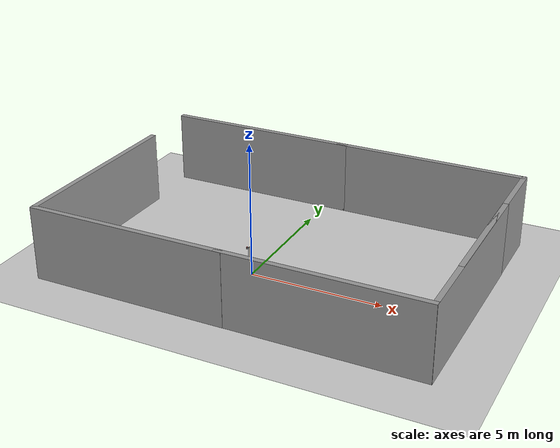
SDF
<sdf version="1.7">
 <world name="default">
  <light name="sun" type="directional">
   <pose>0 0 10 0 -0 0</pose>
   <diffuse>0.8 0.8 0.8 1</diffuse>
   <specular>0.2 0.2 0.2 1</specular>
   <attenuation>
    <range>1000</range>
    <constant>0.9</constant>
    <linear>0.01</linear>
    <quadratic>0.001</quadratic>
   </attenuation>
   <direction>-0.5 0.1 -0.9</direction>
   <spot><inner_angle>0</inner_angle><outer_angle>0</outer_angle><falloff>0</falloff></spot>
  </light>
  <model name="ground_plane">
   <static>1</static>
   <link name="link">
    <collision name="collision">
     <geometry><plane><normal>0 0 1</normal><size>100 100</size></plane></geometry>
     <surface><friction><ode><mu>100</mu><mu2>50</mu2></ode></friction></surface>
    </collision>
    <visual name="visual">
     <cast_shadows>0</cast_shadows>
     <geometry><plane><normal>0 0 1</normal><size>100 100</size></plane></geometry>
     <material>
      <script><uri>file://media/materials/scripts/gazebo.material</uri><name>Gazebo/Grey</name></script>
     </material>
    </visual>
   </link>
  </model>
  <gravity>0 0 -9.8</gravity>
  <magnetic_field>6e-06 2.3e-05 -4.2e-05</magnetic_field>
  <atmosphere type="adiabatic"/>
  <physics type="ode">
   <max_step_size>0.001</max_step_size>
   <real_time_factor>1</real_time_factor>
   <real_time_update_rate>1000</real_time_update_rate>
  </physics>
  <scene><ambient>0.4 0.4 0.4 1</ambient><background>0.7 0.7 0.7 1</background><shadows>1</shadows></scene>
  <audio><device>default</device></audio>
  <spherical_coordinates>
   <surface_model>EARTH_WGS84</surface_model>
   <latitude_deg>0</latitude_deg>
   <longitude_deg>0</longitude_deg>
   <elevation>0</elevation>
   <heading_deg>0</heading_deg>
  </spherical_coordinates>
  <model name="bob">
   <link name="base_link">
    <inertial>
     <pose>0.075524 0 0.197052 0 -0 0</pose>
     <mass>18.5001</mass>
     <inertia>
      <ixx>1.70736</ixx>
      <ixy>0</ixy>
      <ixz>0.545712</ixz>
      <iyy>2.13138</iyy>
      <iyz>1.59522e-13</iyz>
      <izz>0.597791</izz>
     </inertia>
    </inertial>
    <collision name="base_link_fixed_joint_lump__chassis_collision">
     <pose>0.11745 0 0.0425 0 -0 0</pose>
     <geometry><box><size>0.4 0.3 0.085</size></box></geometry>
    </collision>
    <collision name="base_link_fixed_joint_lump__camera_mount_collision_1">
     <pose>-0.10255 0 0.4875 0 -0 0</pose>
     <geometry><box><size>0.04 0.04 0.975</size></box></geometry>
    </collision>
    <collision name="base_link_fixed_joint_lump__camera_frame_collision_2">
     <pose>-0.08255 0 0.99 1.5708 -0 0</pose>
     <geometry><cylinder><length>0.085</length><radius>0.015</radius></cylinder></geometry>
    </collision>
    <collision name="base_link_fixed_joint_lump__emergency_mount_collision_3">
     <pose>-0.15755 0 0.955 0 -0 0</pose>
     <geometry><box><size>0.07 0.07 0.058</size></box></geometry>
    </collision>
    <collision name="base_link_fixed_joint_lump__emergency_button_collision_4">
     <pose>-0.15755 0 0.984 0 -0 0</pose>
     <geometry><cylinder><length>0.03</length><radius>0.02</radius></cylinder></geometry>
    </collision>
    <collision name="base_link_fixed_joint_lump__imu_frame_collision_5">
     <pose>0.04745 0 0.0855 0 -0 0</pose>
     <geometry><box><size>0.02 0.015 0.001</size></box></geometry>
    </collision>
    <collision name="base_link_fixed_joint_lump__lidar_frame_collision_6">
     <pose>0.20245 0 0.1125 0 -0 0</pose>
     <geometry><cylinder><length>0.055</length><radius>0.035</radius></cylinder></geometry>
    </collision>
    <collision name="base_link_fixed_joint_lump__wheel_mount_collision_7">
     <pose>0.39995 0 0.05 0 -0 0</pose>
     <geometry><box><size>0.165 0.08 0.07</size></box></geometry>
    </collision>
    <collision name="base_link_fixed_joint_lump__caster_wheel_collision_8">
     <pose>0.40745 0 -0.033775 0 -0 0</pose>
     <geometry><sphere><radius>0.048775</radius></sphere></geometry>
     <surface><friction><ode><mu>0.001</mu><mu2>0.001</mu2></ode></friction></surface>
    </collision>
    <visual name="base_link_fixed_joint_lump__chassis_visual">
     <pose>0.11745 0 0.0425 0 -0 0</pose>
     <geometry><box><size>0.4 0.3 0.085</size></box></geometry>
     <material>
      <script><name>Gazebo/White</name><uri>file://media/materials/scripts/gazebo.material</uri></script>
     </material>
    </visual>
    <visual name="base_link_fixed_joint_lump__camera_mount_visual_1">
     <pose>-0.10255 0 0.4875 0 -0 0</pose>
     <geometry><box><size>0.04 0.04 0.975</size></box></geometry>
     <material>
      <script><name>Gazebo/White</name><uri>file://media/materials/scripts/gazebo.material</uri></script>
     </material>
    </visual>
    <visual name="base_link_fixed_joint_lump__camera_frame_visual_2">
     <pose>-0.08255 0 0.99 1.5708 -0 0</pose>
     <geometry><cylinder><length>0.085</length><radius>0.015</radius></cylinder></geometry>
     <material>
      <script><name>Gazebo/Black</name><uri>file://media/materials/scripts/gazebo.material</uri></script>
     </material>
    </visual>
    <visual name="base_link_fixed_joint_lump__emergency_mount_visual_3">
     <pose>-0.15755 0 0.955 0 -0 0</pose>
     <geometry><box><size>0.07 0.07 0.058</size></box></geometry>
     <material>
      <script><name>Gazebo/Black</name><uri>file://media/materials/scripts/gazebo.material</uri></script>
     </material>
    </visual>
    <visual name="base_link_fixed_joint_lump__emergency_button_visual_4">
     <pose>-0.15755 0 0.984 0 -0 0</pose>
     <geometry><cylinder><length>0.03</length><radius>0.02</radius></cylinder></geometry>
     <material>
      <script><name>Gazebo/Red</name><uri>file://media/materials/scripts/gazebo.material</uri></script>
     </material>
    </visual>
    <visual name="base_link_fixed_joint_lump__imu_frame_visual_5">
     <pose>0.04745 0 0.0855 0 -0 0</pose>
     <geometry><box><size>0.02 0.015 0.001</size></box></geometry>
     <material>
      <script><name>Gazebo/Blue</name><uri>file://media/materials/scripts/gazebo.material</uri></script>
     </material>
    </visual>
    <visual name="base_link_fixed_joint_lump__lidar_frame_visual_6">
     <pose>0.20245 0 0.1125 0 -0 0</pose>
     <geometry><cylinder><length>0.055</length><radius>0.035</radius></cylinder></geometry>
     <material>
      <script><name>Gazebo/Red</name><uri>file://media/materials/scripts/gazebo.material</uri></script>
     </material>
    </visual>
    <visual name="base_link_fixed_joint_lump__wheel_mount_visual_7">
     <pose>0.39995 0 0.05 0 -0 0</pose>
     <geometry><box><size>0.165 0.08 0.07</size></box></geometry>
    </visual>
    <visual name="base_link_fixed_joint_lump__caster_wheel_visual_8">
     <pose>0.40745 0 -0.033775 0 -0 0</pose>
     <geometry><sphere><radius>0.048775</radius></sphere></geometry>
     <material>
      <script><name>Gazebo/Black</name><uri>file://media/materials/scripts/gazebo.material</uri></script>
     </material>
    </visual>
    <sensor name="camera" type="camera">
     <visualize>0</visualize>
     <update_rate>10</update_rate>
     <camera>
      <horizontal_fov>1.089</horizontal_fov>
      <image><format>R8G8B8</format><width>640</width><height>480</height></image>
      <clip><near>0.05</near><far>8</far></clip>
     </camera>
     <plugin name="camera_controller" filename="libgazebo_ros_camera.so">
      <frame_name>camera_optical_frame</frame_name>
     </plugin>
     <pose>-0.08255 0 0.99 0 -0 0</pose>
    </sensor>
    <sensor name="mpu6050_imu" type="imu">
     <always_on>1</always_on>
     <visualize>0</visualize>
     <update_rate>100</update_rate>
     <plugin name="imu_controller" filename="libgazebo_ros_imu_sensor.so">
      <topic_name>imu</topic_name>
      <frame_name>imu_frame</frame_name>
      <ros><remapping>~/out:=imu_broadcaster/imu</remapping></ros>
      <initial_orientation_as_reference>0</initial_orientation_as_reference>
     </plugin>
     <always_on>1</always_on>
     <update_rate>100</update_rate>
     <visualize>0</visualize>
     <imu>
      <angular_velocity>
       <x><noise type="gaussian"><mean>0</mean><stddev>0.0002</stddev></noise></x>
       <y><noise type="gaussian"><mean>0</mean><stddev>0.0002</stddev></noise></y>
       <z><noise type="gaussian"><mean>0</mean><stddev>0.0002</stddev></noise></z>
      </angular_velocity>
      <linear_acceleration>
       <x><noise type="gaussian"><mean>0</mean><stddev>0.017</stddev></noise></x>
       <y><noise type="gaussian"><mean>0</mean><stddev>0.017</stddev></noise></y>
       <z><noise type="gaussian"><mean>0</mean><stddev>0.017</stddev></noise></z>
      </linear_acceleration>
      <orientation>
       <x><noise type="gaussian"><mean>0.0</mean><stddev>2e-3</stddev></noise></x>
       <y><noise type="gaussian"><mean>0.0</mean><stddev>2e-3</stddev></noise></y>
       <z><noise type="gaussian"><mean>0.0</mean><stddev>2e-3</stddev></noise></z>
      </orientation>
     </imu>
     <pose>0.04745 0 0.0855 0 -0 0</pose>
    </sensor>
    <sensor name="lidar" type="ray">
     <visualize>1</visualize>
     <update_rate>10</update_rate>
     <ray>
      <scan>
       <horizontal>
        <samples>360</samples>
        <min_angle>-2</min_angle>
        <max_angle>2</max_angle>
        <resolution>1</resolution>
       </horizontal>
       <vertical><samples>1</samples><min_angle>0</min_angle><max_angle>0</max_angle></vertical>
      </scan>
      <range><min>0.15</min><max>6</max><resolution>0.015</resolution></range>
      <noise><type>gaussian</type><mean>0</mean><stddev>0.01</stddev></noise>
     </ray>
     <plugin name="laser_controller" filename="libgazebo_ros_ray_sensor.so">
      <ros><argument>~/out:=scan</argument></ros>
      <output_type>sensor_msgs/LaserScan</output_type>
      <frame_name>lidar_frame</frame_name>
     </plugin>
     <pose>0.20245 0 0.1125 0 -0 0</pose>
    </sensor>
   </link>
   <joint name="left_wheel_joint" type="revolute">
    <pose relative_to="base_link">0 0.184 0 -1.5708 0 0</pose>
    <parent>base_link</parent>
    <child>left_wheel</child>
    <axis>
     <xyz>0 0 1</xyz>
     <limit><effort>1000</effort><velocity>1000</velocity><lower>-1e+16</lower><upper>1e+16</upper></limit>
     <dynamics>
      <damping>1</damping>
      <friction>1</friction>
      <spring_reference>0</spring_reference>
      <spring_stiffness>0</spring_stiffness>
     </dynamics>
    </axis>
   </joint>
   <link name="left_wheel">
    <pose relative_to="left_wheel_joint">0 0 0 0 -0 0</pose>
    <inertial>
     <mass>3.94514</mass>
     <inertia>
      <ixx>0.00824123</ixx>
      <ixy>0</ixy>
      <ixz>0</ixz>
      <iyy>0.00824123</iyy>
      <iyz>0</iyz>
      <izz>0.0134421</izz>
     </inertia>
    </inertial>
    <collision name="left_wheel_collision">
     <geometry><cylinder><length>0.068</length><radius>0.08255</radius></cylinder></geometry>
     <surface><friction><ode><mu>0.2</mu><mu2>0.2</mu2></ode></friction></surface>
    </collision>
    <visual name="left_wheel_visual">
     <geometry><cylinder><length>0.068</length><radius>0.08255</radius></cylinder></geometry>
     <material>
      <script><name>Gazebo/Black</name><uri>file://media/materials/scripts/gazebo.material</uri></script>
     </material>
    </visual>
   </link>
   <joint name="right_wheel_joint" type="revolute">
    <pose relative_to="base_link">0 -0.184 0 1.5708 -0 0</pose>
    <parent>base_link</parent>
    <child>right_wheel</child>
    <axis>
     <xyz>0 0 -1</xyz>
     <limit><effort>1000</effort><velocity>1000</velocity><lower>-1e+16</lower><upper>1e+16</upper></limit>
     <dynamics>
      <damping>1</damping>
      <friction>1</friction>
      <spring_reference>0</spring_reference>
      <spring_stiffness>0</spring_stiffness>
     </dynamics>
    </axis>
   </joint>
   <link name="right_wheel">
    <pose relative_to="right_wheel_joint">0 0 0 0 -0 0</pose>
    <inertial>
     <mass>3.94514</mass>
     <inertia>
      <ixx>0.00824123</ixx>
      <ixy>0</ixy>
      <ixz>0</ixz>
      <iyy>0.00824123</iyy>
      <iyz>0</iyz>
      <izz>0.0134421</izz>
     </inertia>
    </inertial>
    <collision name="right_wheel_collision">
     <geometry><cylinder><length>0.068</length><radius>0.08255</radius></cylinder></geometry>
     <surface><friction><ode><mu>0.2</mu><mu2>0.2</mu2></ode></friction></surface>
    </collision>
    <visual name="right_wheel_visual">
     <geometry><cylinder><length>0.068</length><radius>0.08255</radius></cylinder></geometry>
     <material>
      <script><name>Gazebo/Black</name><uri>file://media/materials/scripts/gazebo.material</uri></script>
     </material>
    </visual>
   </link>
   <static>0</static>
   <plugin name="diff_drive" filename="libgazebo_ros_diff_drive.so">
    <left_joint>left_wheel_joint</left_joint>
    <right_joint>right_wheel_joint</right_joint>
    <wheel_separation>0.368</wheel_separation>
    <wheel_diameter>0.1651</wheel_diameter>
    <max_wheel_torque>20</max_wheel_torque>
    <max_wheel_acceleration>2</max_wheel_acceleration>
    <odometry_frame>odom</odometry_frame>
    <robot_base_frame>base_link</robot_base_frame>
    <publish_odom>1</publish_odom>
    <publish_odom_tf>1</publish_odom_tf>
    <publish_wheel_tf>1</publish_wheel_tf>
    <publish_wheel_joint_state>1</publish_wheel_joint_state>
    <command_topic>cmd_vel</command_topic>
    <odometry_topic>odom</odometry_topic>
   </plugin>
   <pose>-1.2e-05 1.9e-05 0.08255 0 0 -0.000138</pose>
  </model>
  <model name="grey_wall">
   <static>1</static>
   <link name="link">
    <pose>0 0 1.4 0 -0 0</pose>
    <collision name="collision"><geometry><box><size>7.5 0.2 2.8</size></box></geometry></collision>
    <visual name="visual">
     <cast_shadows>0</cast_shadows>
     <geometry><box><size>7.5 0.2 2.8</size></box></geometry>
     <material>
      <script>
       <uri>model://grey_wall/materials/scripts</uri>
       <uri>model://grey_wall/materials/textures</uri>
       <name>vrc/grey_wall</name>
      </script>
     </material>
    </visual>
   </link>
   <pose>4.25583 -3.47373 0 0 -0 0</pose>
  </model>
  <model name="grey_wall_0">
   <static>1</static>
   <link name="link">
    <pose>0 0 1.4 0 -0 0</pose>
    <collision name="collision"><geometry><box><size>7.5 0.2 2.8</size></box></geometry></collision>
    <visual name="visual">
     <cast_shadows>0</cast_shadows>
     <geometry><box><size>7.5 0.2 2.8</size></box></geometry>
     <material>
      <script>
       <uri>model://grey_wall/materials/scripts</uri>
       <uri>model://grey_wall/materials/textures</uri>
       <name>vrc/grey_wall</name>
      </script>
     </material>
    </visual>
   </link>
   <pose>-2.94663 -3.47836 0 0 -0 0</pose>
  </model>
  <model name="grey_wall_1">
   <static>1</static>
   <link name="link">
    <pose>0 0 1.4 0 -0 0</pose>
    <collision name="collision"><geometry><box><size>7.5 0.2 2.8</size></box></geometry></collision>
    <visual name="visual">
     <cast_shadows>0</cast_shadows>
     <geometry><box><size>7.5 0.2 2.8</size></box></geometry>
     <material>
      <script>
       <uri>model://grey_wall/materials/scripts</uri>
       <uri>model://grey_wall/materials/textures</uri>
       <name>vrc/grey_wall</name>
      </script>
     </material>
    </visual>
   </link>
   <pose>-6.54135 0.190237 -0 0 0 -1.5859</pose>
  </model>
  <model name="grey_wall_2">
   <static>1</static>
   <link name="link">
    <pose>0 0 1.4 0 -0 0</pose>
    <collision name="collision"><geometry><box><size>7.5 0.2 2.8</size></box></geometry></collision>
    <visual name="visual">
     <cast_shadows>0</cast_shadows>
     <geometry><box><size>7.5 0.2 2.8</size></box></geometry>
     <material>
      <script>
       <uri>model://grey_wall/materials/scripts</uri>
       <uri>model://grey_wall/materials/textures</uri>
       <name>vrc/grey_wall</name>
      </script>
     </material>
    </visual>
   </link>
   <pose>-2.85548 6.37126 0 0 -0 0</pose>
  </model>
  <model name="grey_wall_3">
   <static>1</static>
   <link name="link">
    <pose>0 0 1.4 0 -0 0</pose>
    <collision name="collision"><geometry><box><size>7.5 0.2 2.8</size></box></geometry></collision>
    <visual name="visual">
     <cast_shadows>0</cast_shadows>
     <geometry><box><size>7.5 0.2 2.8</size></box></geometry>
     <material>
      <script>
       <uri>model://grey_wall/materials/scripts</uri>
       <uri>model://grey_wall/materials/textures</uri>
       <name>vrc/grey_wall</name>
      </script>
     </material>
    </visual>
   </link>
   <pose>4.21256 6.37126 0 0 -0 0</pose>
  </model>
  <model name="grey_wall_4">
   <static>1</static>
   <link name="link">
    <pose>0 0 1.4 0 -0 0</pose>
    <collision name="collision"><geometry><box><size>7.5 0.2 2.8</size></box></geometry></collision>
    <visual name="visual">
     <cast_shadows>0</cast_shadows>
     <geometry><box><size>7.5 0.2 2.8</size></box></geometry>
     <material>
      <script>
       <uri>model://grey_wall/materials/scripts</uri>
       <uri>model://grey_wall/materials/textures</uri>
       <name>vrc/grey_wall</name>
      </script>
     </material>
    </visual>
   </link>
   <pose>7.92168 0.177892 0 0 0 -1.57239</pose>
  </model>
  <model name="grey_wall_5">
   <static>1</static>
   <link name="link">
    <pose>0 0 1.4 0 -0 0</pose>
    <collision name="collision"><geometry><box><size>7.5 0.2 2.8</size></box></geometry></collision>
    <visual name="visual">
     <cast_shadows>0</cast_shadows>
     <geometry><box><size>7.5 0.2 2.8</size></box></geometry>
     <material>
      <script>
       <uri>model://grey_wall/materials/scripts</uri>
       <uri>model://grey_wall/materials/textures</uri>
       <name>vrc/grey_wall</name>
      </script>
     </material>
    </visual>
   </link>
   <pose>7.91325 2.6926 0 0 0 -1.57176</pose>
  </model>
 </world>
</sdf>
